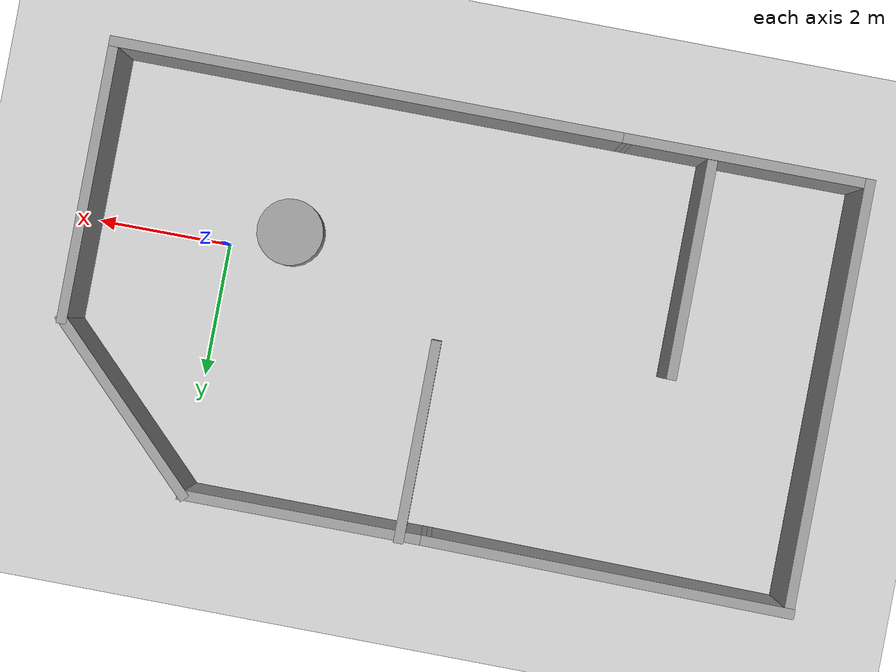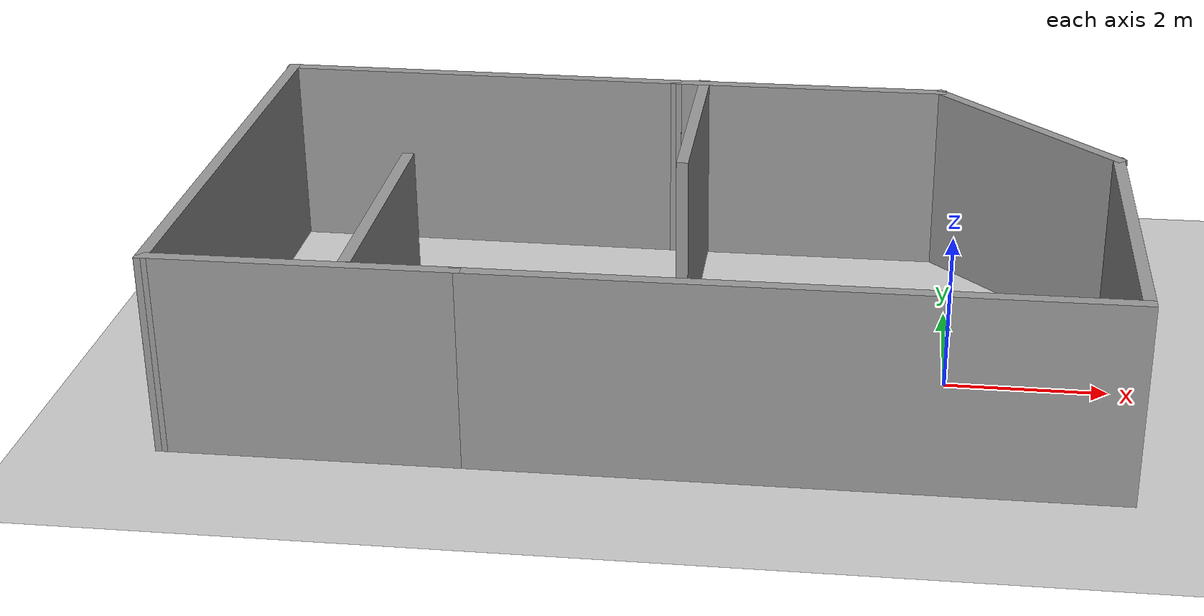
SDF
<sdf version="1.7">
 <world name="default">
  <light name="sun" type="directional">
   <pose>0 0 10 0 -0 0</pose>
   <diffuse>0.8 0.8 0.8 1</diffuse>
   <specular>0.2 0.2 0.2 1</specular>
   <attenuation>
    <range>1000</range>
    <constant>0.9</constant>
    <linear>0.01</linear>
    <quadratic>0.001</quadratic>
   </attenuation>
   <direction>-0.5 0.1 -0.9</direction>
   <spot><inner_angle>0</inner_angle><outer_angle>0</outer_angle><falloff>0</falloff></spot>
  </light>
  <model name="ground_plane">
   <static>1</static>
   <link name="link">
    <collision name="collision">
     <geometry><plane><normal>0 0 1</normal><size>100 100</size></plane></geometry>
     <surface><friction><ode><mu>100</mu><mu2>50</mu2></ode></friction></surface>
    </collision>
    <visual name="visual">
     <cast_shadows>0</cast_shadows>
     <geometry><plane><normal>0 0 1</normal><size>100 100</size></plane></geometry>
     <material>
      <script><uri>file://media/materials/scripts/gazebo.material</uri><name>Gazebo/Grey</name></script>
     </material>
    </visual>
   </link>
  </model>
  <gravity>0 0 -9.8</gravity>
  <magnetic_field>6e-06 2.3e-05 -4.2e-05</magnetic_field>
  <atmosphere type="adiabatic"/>
  <physics type="ode">
   <max_step_size>0.001</max_step_size>
   <real_time_factor>1</real_time_factor>
   <real_time_update_rate>1000</real_time_update_rate>
  </physics>
  <scene><ambient>0.4 0.4 0.4 1</ambient><background>0.7 0.7 0.7 1</background><shadows>1</shadows></scene>
  <audio><device>default</device></audio>
  <spherical_coordinates>
   <surface_model>EARTH_WGS84</surface_model>
   <latitude_deg>0</latitude_deg>
   <longitude_deg>0</longitude_deg>
   <elevation>0</elevation>
   <heading_deg>0</heading_deg>
  </spherical_coordinates>
  <model name="tasks_map">
   <pose>-3.53718 0.600711 0 0 -0 0</pose>
   <link name="Wall_11">
    <collision name="Wall_11_Collision">
     <geometry><box><size>5.54293 0.15 2.5</size></box></geometry>
     <pose>0 0 1.25 0 -0 0</pose>
    </collision>
    <visual name="Wall_11_Visual">
     <pose>0 0 1.25 0 -0 0</pose>
     <geometry><box><size>5.54293 0.15 2.5</size></box></geometry>
     <material>
      <script><uri>file://media/materials/scripts/gazebo.material</uri><name>Gazebo/Grey</name></script>
      <ambient>1 1 1 1</ambient>
     </material>
     <meta><layer>0</layer></meta>
    </visual>
    <pose>-2.91118 3.148 0 0 -0 -0.009895</pose>
   </link>
   <link name="Wall_13">
    <collision name="Wall_13_Collision">
     <geometry><box><size>3 0.15 2.5</size></box></geometry>
     <pose>0 0 1.25 0 -0 0</pose>
    </collision>
    <visual name="Wall_13_Visual">
     <pose>0 0 1.25 0 -0 0</pose>
     <geometry><box><size>3 0.15 2.5</size></box></geometry>
     <material>
      <script><uri>file://media/materials/scripts/gazebo.material</uri><name>Gazebo/Grey</name></script>
      <ambient>1 1 1 1</ambient>
     </material>
     <meta><layer>0</layer></meta>
    </visual>
    <pose>0.167914 1.72767 0 0 -0 -1.5708</pose>
   </link>
   <link name="Wall_15">
    <collision name="Wall_15_Collision">
     <geometry><box><size>6.5 0.15 2.5</size></box></geometry>
     <pose>0 0 1.25 0 -0 0</pose>
    </collision>
    <visual name="Wall_15_Visual">
     <pose>0 0 1.25 0 -0 0</pose>
     <geometry><box><size>6.5 0.15 2.5</size></box></geometry>
     <material>
      <script><uri>file://media/materials/scripts/gazebo.material</uri><name>Gazebo/Grey</name></script>
      <ambient>1 1 1 1</ambient>
     </material>
     <meta><layer>0</layer></meta>
    </visual>
    <pose>-5.59595 -0.000321 0 0 -0 -1.5708</pose>
   </link>
   <link name="Wall_18">
    <collision name="Wall_18_Collision">
     <geometry><box><size>3.72313 0.15 2.5</size></box></geometry>
     <pose>0 0 1.25 0 -0 0</pose>
    </collision>
    <visual name="Wall_18_Visual">
     <pose>0 0 1.25 0 -0 0</pose>
     <geometry><box><size>3.72313 0.15 2.5</size></box></geometry>
     <material>
      <script><uri>file://media/materials/scripts/gazebo.material</uri><name>Gazebo/Grey</name></script>
      <ambient>1 1 1 1</ambient>
     </material>
     <meta><layer>0</layer></meta>
    </visual>
    <pose>-3.80938 -3.17302 0 0 -0 -3.1403</pose>
   </link>
   <link name="Wall_21">
    <collision name="Wall_21_Collision">
     <geometry><box><size>3.25 0.15 2.5</size></box></geometry>
     <pose>0 0 1.25 0 -0 0</pose>
    </collision>
    <visual name="Wall_21_Visual">
     <pose>0 0 1.25 0 -0 0</pose>
     <geometry><box><size>3.25 0.15 2.5</size></box></geometry>
     <material>
      <script><uri>file://media/materials/scripts/gazebo.material</uri><name>Gazebo/Grey</name></script>
      <ambient>1 1 1 1</ambient>
     </material>
     <meta><layer>0</layer></meta>
    </visual>
    <pose>-3.28791 -1.46889 0 0 -0 1.5708</pose>
   </link>
   <link name="Wall_5">
    <collision name="Wall_5_Collision">
     <geometry><box><size>7.75 0.15 2.5</size></box></geometry>
     <pose>0 0 1.25 0 -0 0</pose>
    </collision>
    <visual name="Wall_5_Visual">
     <pose>0 0 1.25 0 -0 0</pose>
     <geometry><box><size>7.75 0.15 2.5</size></box></geometry>
     <material>
      <script><uri>file://media/materials/scripts/gazebo.material</uri><name>Gazebo/Grey</name></script>
      <ambient>1 1 1 1</ambient>
     </material>
     <meta><layer>0</layer></meta>
    </visual>
    <pose>1.77718 -3.17071 0 0 -0 0</pose>
   </link>
   <link name="Wall_6">
    <collision name="Wall_6_Collision">
     <geometry><box><size>4.25 0.15 2.5</size></box></geometry>
     <pose>0 0 1.25 0 -0 0</pose>
    </collision>
    <visual name="Wall_6_Visual">
     <pose>0 0 1.25 0 -0 0</pose>
     <geometry><box><size>4.25 0.15 2.5</size></box></geometry>
     <material>
      <script><uri>file://media/materials/scripts/gazebo.material</uri><name>Gazebo/Grey</name></script>
      <ambient>1 1 1 1</ambient>
     </material>
     <meta><layer>0</layer></meta>
    </visual>
    <pose>5.57718 -1.12071 0 0 -0 1.5708</pose>
   </link>
   <link name="Wall_7">
    <collision name="Wall_7_Collision">
     <geometry><box><size>3.25 0.15 2.5</size></box></geometry>
     <pose>0 0 1.25 0 -0 0</pose>
    </collision>
    <visual name="Wall_7_Visual">
     <pose>0 0 1.25 0 -0 0</pose>
     <geometry><box><size>3.25 0.15 2.5</size></box></geometry>
     <material>
      <script><uri>file://media/materials/scripts/gazebo.material</uri><name>Gazebo/Grey</name></script>
      <ambient>1 1 1 1</ambient>
     </material>
     <meta><layer>0</layer></meta>
    </visual>
    <pose>4.48117 2.0253 0 0 -0 2.35619</pose>
   </link>
   <link name="Wall_8">
    <collision name="Wall_8_Collision">
     <geometry><box><size>3.75 0.15 2.5</size></box></geometry>
     <pose>0 0 1.25 0 -0 0</pose>
    </collision>
    <visual name="Wall_8_Visual">
     <pose>0 0 1.25 0 -0 0</pose>
     <geometry><box><size>3.75 0.15 2.5</size></box></geometry>
     <material>
      <script><uri>file://media/materials/scripts/gazebo.material</uri><name>Gazebo/Grey</name></script>
      <ambient>1 1 1 1</ambient>
     </material>
     <meta><layer>0</layer></meta>
    </visual>
    <pose>1.58515 3.12132 0 0 -0 3.14159</pose>
   </link>
   <static>1</static>
  </model>
  <model name="unit_cylinder">
   <pose>-0.910157 -0.34874 0.499996 3e-06 -3e-06 0</pose>
   <link name="link">
    <inertial>
     <mass>1</mass>
     <inertia><ixx>0.145833</ixx><ixy>0</ixy><ixz>0</ixz><iyy>0.145833</iyy><iyz>0</iyz><izz>0.125</izz></inertia>
    </inertial>
    <collision name="collision">
     <geometry><cylinder><radius>0.5</radius><length>1</length></cylinder></geometry>
    </collision>
    <visual name="visual">
     <geometry><cylinder><radius>0.5</radius><length>1</length></cylinder></geometry>
     <material>
      <script><name>Gazebo/Grey</name><uri>file://media/materials/scripts/gazebo.material</uri></script>
     </material>
    </visual>
   </link>
  </model>
 </world>
</sdf>
